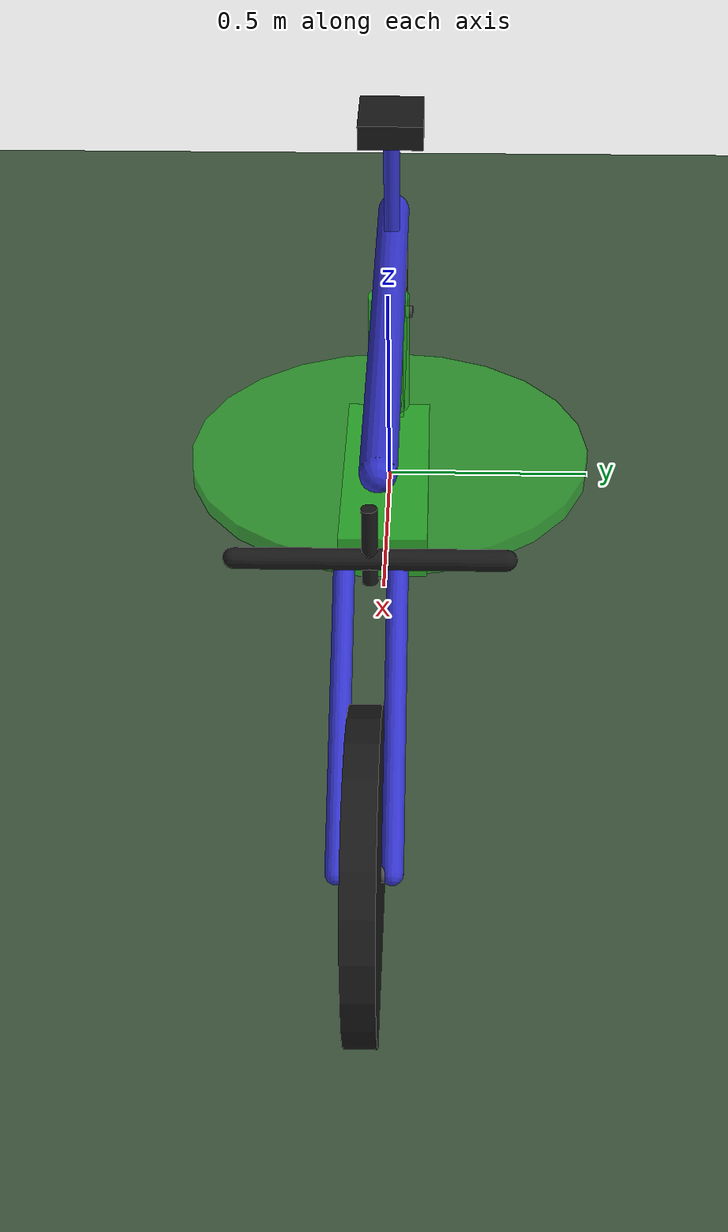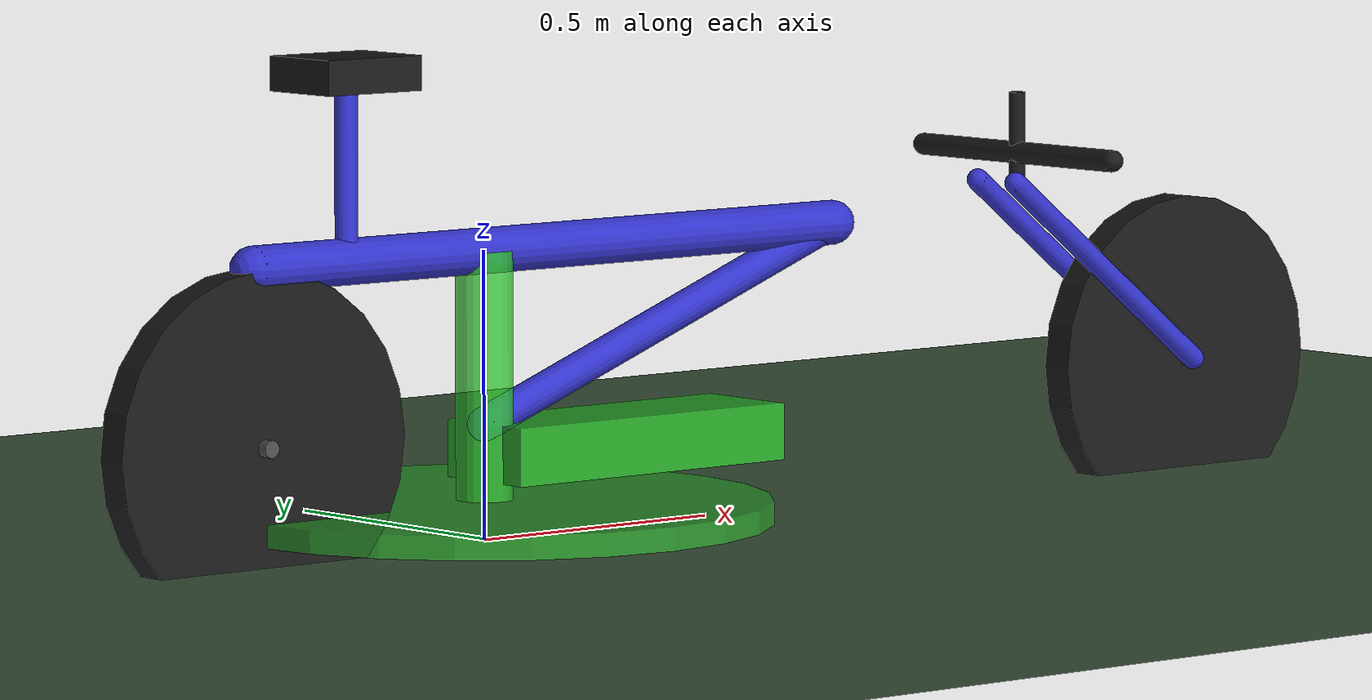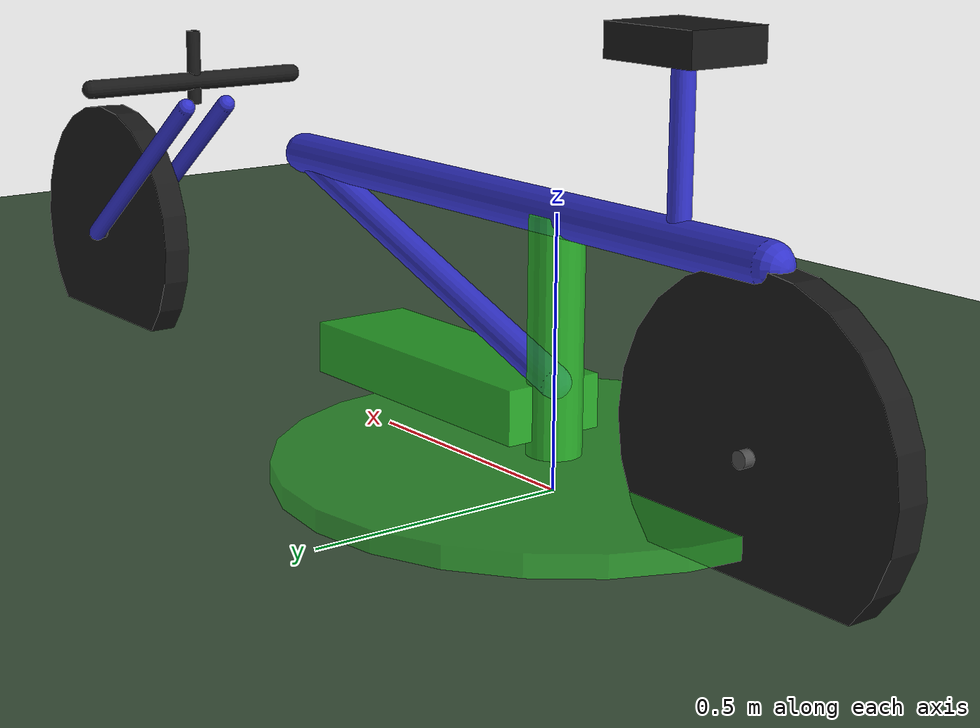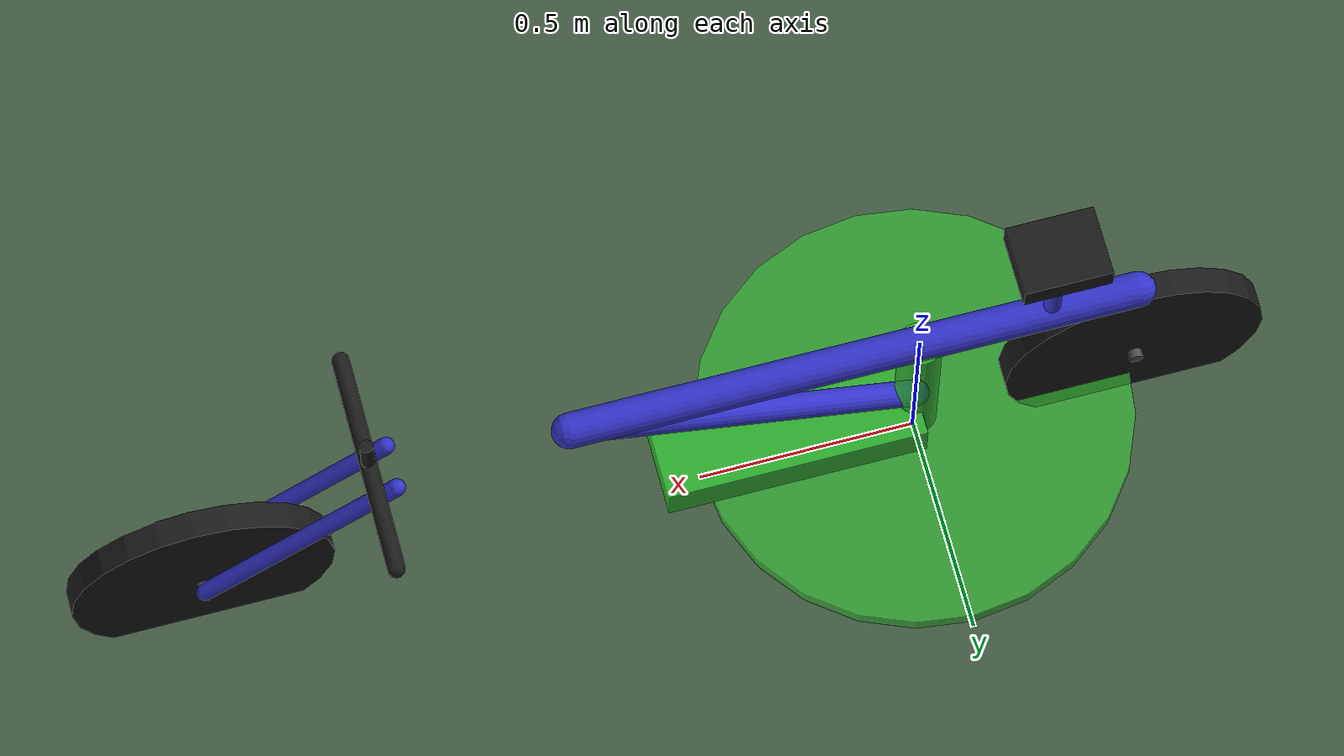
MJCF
<?xml version="1.0" ?>
<mujoco model="bicycle">
  <compiler angle="radian"/>

  <option gravity="0 0 -9.81" timestep="0.01"/>

  <asset>
    <texture name="grid" type="2d" builtin="checker" width="512" height="512"
             rgb1="0.2 0.3 0.2" rgb2="0.3 0.4 0.3"/>
    <material name="grid" texture="grid" texrepeat="1 1" texuniform="true" reflectance="0.2"/>
  </asset>

  <worldbody>
    <!-- Ground plane -->
    <geom name="ground" type="plane" size="50 50 0.1" material="grid"/>

    <!-- Bicycle frame (main body) - free floating with position and orientation DOFs -->
    <body name="frame" pos="0 0 0.5">
      <!-- X position -->
      <freejoint/>

      <!-- Frame visualization (main tube) -->
      <geom name="frame_main" type="capsule" size="0.04" fromto="-0.5 0 0 0.8 0 0" rgba="0.2 0.2 0.8 1"/>

      <!-- Seat post and seat -->
      <geom name="seat_post" type="cylinder" size="0.02 0.15" rgba="0.2 0.2 0.8 1" pos="-0.3 0 0.15"/>
      <geom name="seat" type="box" size="0.1 0.08 0.03" rgba="0.1 0.1 0.1 1" pos="-0.3 0 0.32"/>

      <!-- Down tube -->
      <geom name="down_tube" type="capsule" size="0.03" fromto="0.8 0 0 0 0 -0.3" rgba="0.2 0.2 0.8 1"/>

      <!-- Rear wheel (fixed to frame at rear axle) -->
      <geom name="rear_wheel" type="cylinder" size="0.3 0.03" rgba="0.1 0.1 0.1 1"
            pos="-0.5 0 -0.3" euler="1.5708 0 0"/>
      <geom name="rear_axle" type="cylinder" size="0.015 0.05" rgba="0.3 0.3 0.3 1"
            pos="-0.5 0 -0.3" euler="1.5708 0 0"/>

      <!-- Front fork (steerable) -->
      <body name="front_fork" pos="1.25 0 0.05">
        <!-- Steering joint (hinge around vertical axis) -->
        <joint name="steering" type="hinge" axis="0 0 1" limited="true" range="-0.7 0.7" damping="0.1"/>

        <!-- Fork tubes -->
        <geom name="fork_left" type="capsule" size="0.02" fromto="-0.05 -0.05 0 0.4 -0.05 -0.35" rgba="0.2 0.2 0.8 1"/>
        <geom name="fork_right" type="capsule" size="0.02" fromto="-0.05 0.05 0 0.4 0.05 -0.35" rgba="0.2 0.2 0.8 1"/>

        <!-- Handlebars -->
        <geom name="handlebar" type="capsule" size="0.02" fromto="0 -0.25 0.05 0 0.25 0.05" rgba="0.1 0.1 0.1 1"/>
        <geom name="stem" type="cylinder" size="0.015 0.08" rgba="0.1 0.1 0.1 1" pos="0 0 0.08"/>

        <!-- Front wheel -->
        <geom name="front_wheel" type="cylinder" size="0.3 0.03" rgba="0.1 0.1 0.1 1"
              pos="0.4 0 -0.35" euler="1.5708 0 0"/>
        <geom name="front_axle" type="cylinder" size="0.015 0.05" rgba="0.3 0.3 0.3 1"
              pos="0.4 0 -0.35" euler="1.5708 0 0"/>
      </body>
    </body>

    <!-- Start position marker (green) -->
    <body name="start_marker" pos="0 0 0.05">
      <geom name="start_base" type="cylinder" size="0.5 0.02" rgba="0.2 0.8 0.2 0.6"/>
      <geom name="start_arrow" type="box" size="0.3 0.1 0.05" rgba="0.2 0.8 0.2 0.8" pos="0.3 0 0.1"/>
      <geom name="start_post" type="cylinder" size="0.05 0.3" rgba="0.2 0.8 0.2 0.8" pos="0 0 0.15"/>
    </body>

    <!-- Goal position marker (red) -->
    <body name="goal_marker" pos="0 0 0.05">
      <geom name="goal_base" type="cylinder" size="0.5 0.02" rgba="0.8 0.2 0.2 0.6"/>
      <geom name="goal_arrow" type="box" size="0.3 0.1 0.05" rgba="0.8 0.2 0.2 0.8" pos="0.3 0 0.1"/>
      <geom name="goal_post" type="cylinder" size="0.05 0.3" rgba="0.8 0.2 0.2 0.8" pos="0 0 0.15"/>
    </body>

    <!-- Light -->
    <light pos="5 5 10" dir="-0.5 -0.5 -1" diffuse="0.8 0.8 0.8"/>
    <light pos="-5 -5 8" dir="0.5 0.5 -1" diffuse="0.4 0.4 0.4"/>
  </worldbody>
</mujoco>
